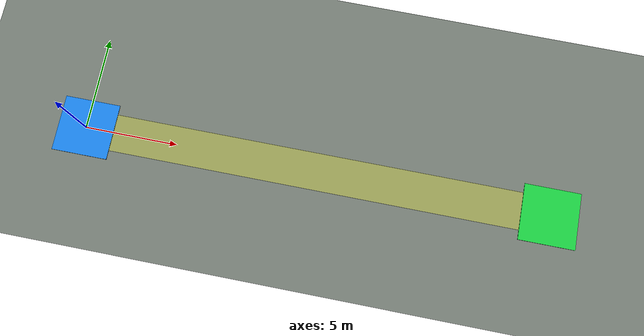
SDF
<?xml version="1.0" ?>
<sdf version="1.9">
  <world name="delivery_minimal">
    <gravity>0 0 -9.8</gravity>
    <scene>
      <ambient>0.4 0.4 0.4 1</ambient>
      <background>0.7 0.8 1.0 1</background>
    </scene>

    <model name="ground_plane">
      <static>true</static>
      <link name="link">
        <collision name="collision">
          <geometry>
            <plane>
              <normal>0 0 1</normal>
              <size>80 80</size>
            </plane>
          </geometry>
        </collision>
        <visual name="visual">
          <geometry>
            <plane>
              <normal>0 0 1</normal>
              <size>80 80</size>
            </plane>
          </geometry>
          <material>
            <ambient>0.45 0.48 0.45 1</ambient>
            <diffuse>0.45 0.48 0.45 1</diffuse>
          </material>
        </visual>
      </link>
    </model>

    <model name="pickup_pad_a">
      <static>true</static>
      <pose>0 0 0.025 0 0 0</pose>
      <link name="link">
        <visual name="visual">
          <geometry>
            <box>
              <size>3 3 0.05</size>
            </box>
          </geometry>
          <material>
            <ambient>0.1 0.5 0.9 1</ambient>
            <diffuse>0.1 0.5 0.9 1</diffuse>
          </material>
        </visual>
      </link>
    </model>

    <model name="dropoff_pad_b">
      <static>true</static>
      <pose>25 0 0.025 0 0 0</pose>
      <link name="link">
        <visual name="visual">
          <geometry>
            <box>
              <size>3 3 0.05</size>
            </box>
          </geometry>
          <material>
            <ambient>0.1 0.8 0.25 1</ambient>
            <diffuse>0.1 0.8 0.25 1</diffuse>
          </material>
        </visual>
      </link>
    </model>

    <model name="safe_corridor_pickup_to_dropoff">
      <static>true</static>
      <pose>12.5 0 0.01 0 0 0</pose>
      <link name="link">
        <visual name="visual">
          <geometry>
            <box>
              <size>25 2 0.02</size>
            </box>
          </geometry>
          <material>
            <ambient>0.9 0.9 0.15 0.35</ambient>
            <diffuse>0.9 0.9 0.15 0.35</diffuse>
          </material>
        </visual>
      </link>
    </model>
  </world>
</sdf>
